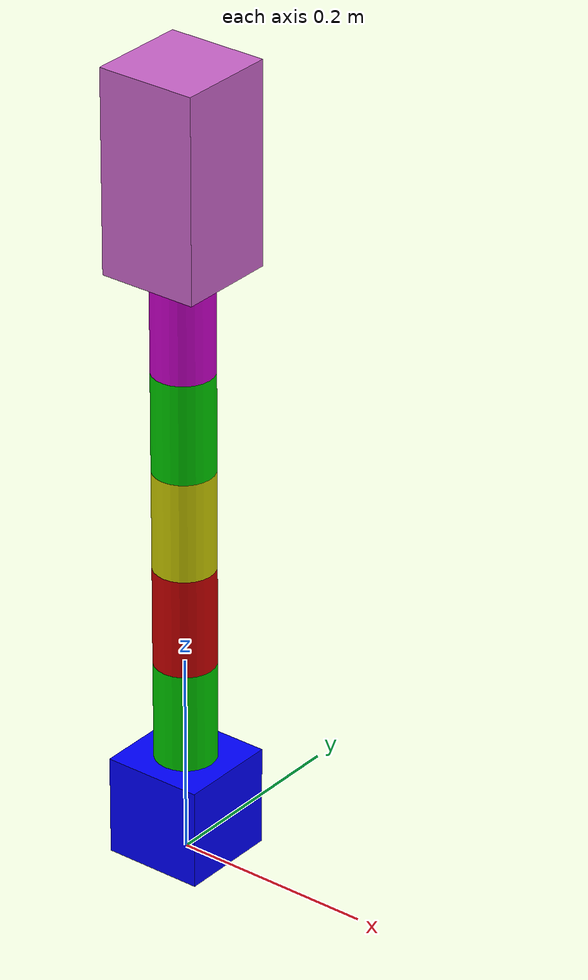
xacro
<?xml version="1.0"?>
<robot xmlns:xacro="http://www.ros.org/wiki/xacro" name="six_arm">
    <xacro:arg name="initial_positions_file" default="initial_positions.yaml" />

    <!-- Import six_arm urdf file -->
    <xacro:include filename="$(find gazebo_robot_test)/urdf/test.urdf" />

    <!-- Import control_xacro -->
    <xacro:include filename="six_arm.ros2_control.xacro" />

    <xacro:six_arm_ros2_control name="FakeSystem" initial_positions_file="$(arg initial_positions_file)"/>

</robot>

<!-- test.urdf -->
<robot name="six_arm">

    <!-- Base link -->
    <link name="base_link">
        <visual>
            <geometry>
                <box size="0.1 0.1 0.1"/>
            </geometry>
            <origin rpy="0 0 0" xyz="0 0 0.05"/>
            <material name="blue">
                <color rgba="0 0 1.0 1"/>
            </material>
        </visual>
        <collision>
            <geometry>
                <box size="0.1 0.1 0.1"/>
            </geometry>
            <origin rpy="0 0 0" xyz="0 0 0.05"/>
        </collision>
        <inertial>
            <mass value="10"/>
            <inertia ixx="0" ixy="0" ixz="0" iyy="0" iyz="0" izz="0"/>
        </inertial>
    </link>

    <!-- Link 1 -->
    <link name="link1">
        <visual>
            <geometry>
                <cylinder length="0.1" radius="0.03"/>
            </geometry>
            <origin rpy="0 0 0" xyz="0 0 0.05"/>
            <material name="green">
                <color rgba="0 0.8 0 1"/>
            </material>
        </visual>
        <collision>
            <geometry>
                <cylinder length="0.1" radius="0.03"/>
            </geometry>
            <origin rpy="0 0 0" xyz="0 0 0.05"/>
        </collision>
        <inertial>
            <mass value="0.2"/>
            <inertia ixx="0" ixy="0" ixz="0" iyy="0" iyz="0" izz="0"/>
        </inertial>
    </link>

    <!-- Joint 1: rotation around X-axis -->
    <joint name="joint1" type="continuous">
        <parent link="base_link"/>
        <child link="link1"/>
        <axis xyz="0 0 1"/>
        <origin xyz="0 0 0.1" rpy="0 0 0"/>
    </joint>

    <!-- Link 2 -->
    <link name="link2">
        <visual>
            <geometry>
                <cylinder length="0.1" radius="0.03"/>
            </geometry>
            <origin rpy="0 0 0" xyz="0 0 0.05"/>
            <material name="red">
                <color rgba="0.8 0 0 1"/>
            </material>
        </visual>
        <collision>
            <geometry>
                <cylinder length="0.1" radius="0.03"/>
            </geometry>
            <origin rpy="0 0 0" xyz="0 0 0.05"/>
        </collision>
        <inertial>
            <mass value="0.2"/>
            <inertia ixx="0" ixy="0" ixz="0" iyy="0" iyz="0" izz="0"/>
        </inertial>
    </link>

    <!-- Joint 2: rotation around Y-axis -->
    <joint name="joint2" type="continuous">
        <parent link="link1"/>
        <child link="link2"/>
        <axis xyz="1 0 0"/>
        <origin xyz="0 0 0.1"/>
    </joint>

    <!-- Link 3 -->
    <link name="link3">
        <visual>
            <geometry>
                <cylinder length="0.1" radius="0.03"/>
            </geometry>
            <origin rpy="0 0 0" xyz="0 0 0.05"/>
            <material name="yellow">
                <color rgba="0.8 0.8 0 1"/>
            </material>
        </visual>
        <collision>
            <geometry>
                <cylinder length="0.1" radius="0.03"/>
            </geometry>
            <origin rpy="0 0 0" xyz="0 0 0.05"/>
        </collision>
        <inertial>
            <mass value="0.2"/>
            <inertia ixx="0" ixy="0" ixz="0" iyy="0" iyz="0" izz="0"/>
        </inertial>
    </link>

    <!-- Joint 3: rotation around x-axis -->
    <joint name="joint3" type="continuous">
        <parent link="link2"/>
        <child link="link3"/>
        <axis xyz="1 0 0"/>
        <origin xyz="0 0 0.1"/>
    </joint>

    <!-- Link 4 -->
    <link name="link4">
        <visual>
            <geometry>
                <cylinder length="0.1" radius="0.03"/>
            </geometry>
            <origin rpy="0 0 0" xyz="0 0 0.05"/>
            <material name="green">
                <color rgba="0 0.8 0 1"/>
            </material>
        </visual>
        <collision>
            <geometry>
                <cylinder length="0.1" radius="0.03"/>
            </geometry>
            <origin rpy="0 0 0" xyz="0 0 0.05"/>
        </collision>
        <inertial>
            <mass value="0.2"/>
            <inertia ixx="0" ixy="0" ixz="0" iyy="0" iyz="0" izz="0"/>
        </inertial>
    </link>

    <!-- Joint 4: rotation around X-axis -->
    <joint name="joint4" type="continuous">
        <parent link="link3"/>
        <child link="link4"/>
        <axis xyz="0 1 0"/>
        <origin xyz="0 0 0.1"/>
    </joint>

    <!-- Link 5 -->
    <link name="link5">
        <visual>
            <geometry>
                <cylinder length="0.1" radius="0.03"/>
            </geometry>
            <origin rpy="0 0 0" xyz="0 0 0.05"/>
            <material name="purple">
                <color rgba="0.8 0 0.8 1"/>
            </material>
        </visual>
        <collision>
            <geometry>
                <cylinder length="0.1" radius="0.03"/>
            </geometry>
            <origin rpy="0 0 0" xyz="0 0 0.05"/>
        </collision>
        <inertial>
            <mass value="0.2"/>
            <inertia ixx="0" ixy="0" ixz="0" iyy="0" iyz="0" izz="0"/>
        </inertial>
    </link>

    <!-- Joint 5: rotation around Y-axis -->
    <joint name="joint5" type="continuous">
        <parent link="link4"/>
        <child link="link5"/>
        <axis xyz="1 0 0"/>
        <origin xyz="0 0 0.1"/>
    </joint>

    <!-- Link 6 -->
    <link name="link6">
        <visual>
            <geometry>
                <box size="0.1 0.1 0.2"/>
            </geometry>
            <origin rpy="0 0 0" xyz="0 0 0.1"/>
            <material name="pink">
                <color rgba="0.8 0.4 0.8 1"/>
            </material>
        </visual>
        <collision>
            <geometry>
                <box size="0.1 0.1 0.2"/>
            </geometry>
            <origin rpy="0 0 0" xyz="0 0 0.1"/>
        </collision>
        <inertial>
            <mass value="0.2"/>
            <inertia ixx="0" ixy="0" ixz="0" iyy="0" iyz="0" izz="0"/>
        </inertial>
    </link>

    <!-- Joint 6: rotation around Z-axis -->
    <joint name="joint6" type="continuous">
        <parent link="link5"/>
        <child link="link6"/>
        <axis xyz="0 0 1"/>
        <origin xyz="0 0 0.1"/>
    </joint>

    <!-- Used for fixing robot to Gazebo 'base_link' 将机械手的基座固定在世界坐标上-->
    <link name="world"/>

    <joint name="fixed" type="fixed">
        <parent link="world"/>
        <child link="base_link"/>
    </joint>

    <gazebo reference="base_link">
        <material>Gazebo/Black</material>
        <gravity>true</gravity>
        <selfCollide>false</selfCollide>
    </gazebo>
    <gazebo reference="link1">
        <material>Gazebo/Gray</material>
        <selfCollide>false</selfCollide>
    </gazebo>
    <gazebo reference="link2">
        <material>Gazebo/Red</material>
        <selfCollide>false</selfCollide>
    </gazebo>
    <gazebo reference="link3">
        <material>Gazebo/Blue</material>
    </gazebo>
    <gazebo reference="link4">
        <material>Gazebo/Green</material>
    </gazebo>
    <gazebo reference="link5">
        <material>Gazebo/Yellow</material>
    </gazebo>
    <gazebo reference="link6">
        <material>Gazebo/Orange</material>
    </gazebo>

    <!-- 在运行demo.launch.py时，需要注释这个ros2_control节点，因为它使用了xxx.ros2_control.xacro来生成了ros2_control节点-->
    <ros2_control name="GazeboSystem" type="system">
        <hardware>
            <plugin>gazebo_ros2_control/GazeboSystem</plugin>
        </hardware>
        <joint name="joint1">
            <command_interface name="position">
                <param name="min">-1</param>
                <param name="max">1</param>
            </command_interface>
            <state_interface name="position">
                <param name="initial_value">0.0</param>
            </state_interface>
            <state_interface name="velocity"/>
        </joint>
        <joint name="joint2">
            <command_interface name="position">
                <param name="min">-1</param>
                <param name="max">1</param>
            </command_interface>
            <state_interface name="position">
                <param name="initial_value">0.0</param>
            </state_interface>
            <state_interface name="velocity"/>
        </joint>
        <joint name="joint3">
            <command_interface name="position">
                <param name="min">-1</param>
                <param name="max">1</param>
            </command_interface>
            <state_interface name="position">
                <param name="initial_value">0.0</param>
            </state_interface>
            <state_interface name="velocity"/>
        </joint>
        <joint name="joint4">
            <command_interface name="position">
                <param name="min">-1</param>
                <param name="max">1</param>
            </command_interface>
            <state_interface name="position">
                <param name="initial_value">0.0</param>
            </state_interface>
            <state_interface name="velocity"/>
        </joint>
        <joint name="joint5">
            <command_interface name="position">
                <param name="min">-1</param>
                <param name="max">1</param>
            </command_interface>
            <state_interface name="position">
                <param name="initial_value">0.0</param>
            </state_interface>
            <state_interface name="velocity"/>
        </joint>
        <joint name="joint6">
            <command_interface name="position">
                <param name="min">-1</param>
                <param name="max">1</param>
            </command_interface>
            <state_interface name="position">
                <param name="initial_value">0.0</param>
            </state_interface>
            <state_interface name="velocity"/>
        </joint>
    </ros2_control>

    <gazebo>
        <plugin filename="libgazebo_ros2_control.so" name="gazebo_ros2_control">
            <!--launch controller manager to manage joint_state_boardcaster and my_arm_group_controller-->
            <parameters>$(find gazebo_robot_test_moveit_config)/config/ros2_controllers.yaml</parameters>
            <!--declare where to get robot_description-->
            <robot_param_node>robot_state_publisher</robot_param_node>
        </plugin>
    </gazebo>

</robot>
